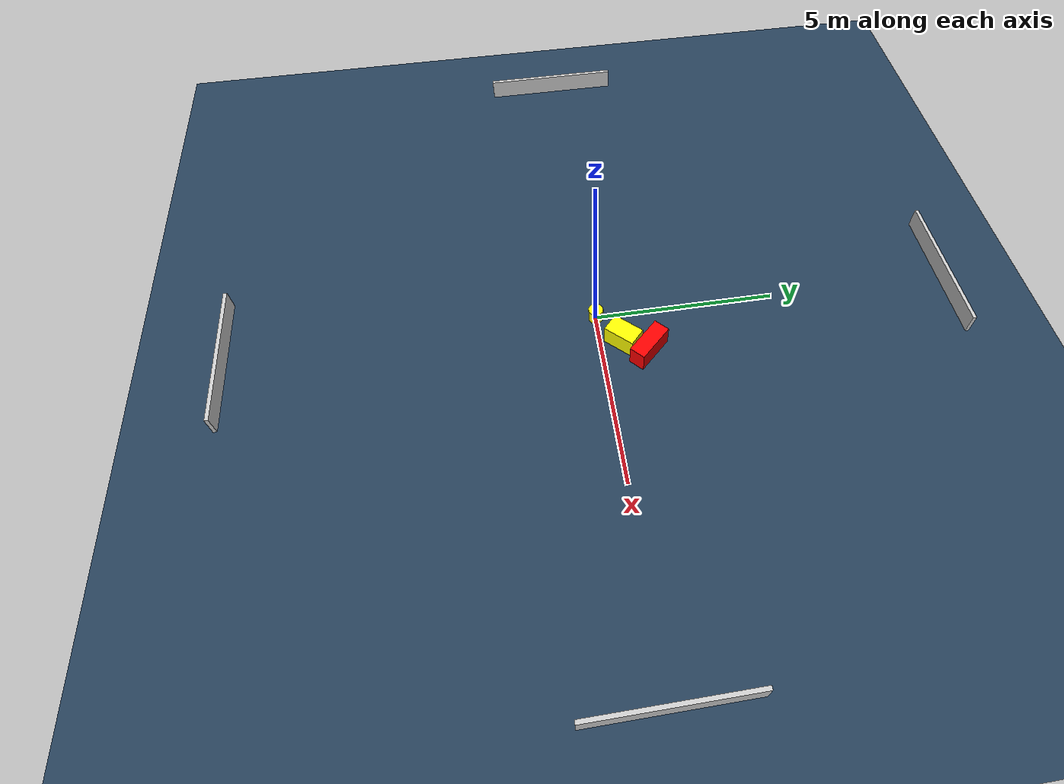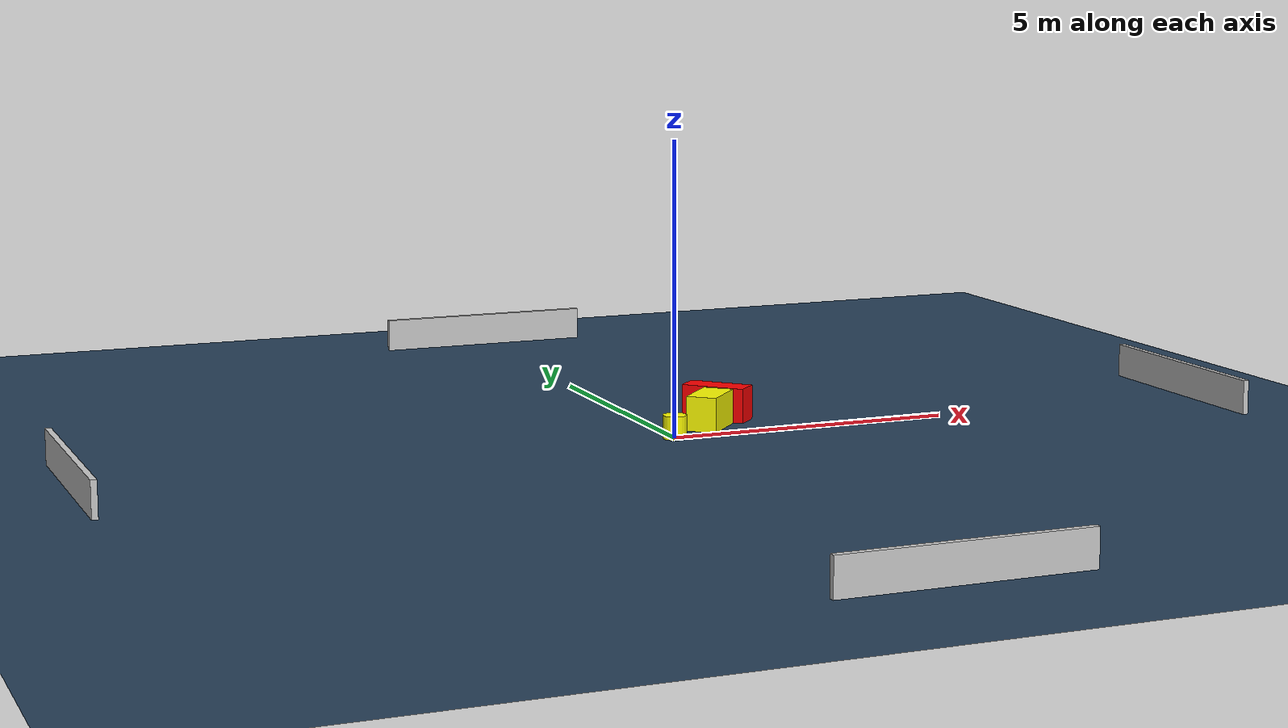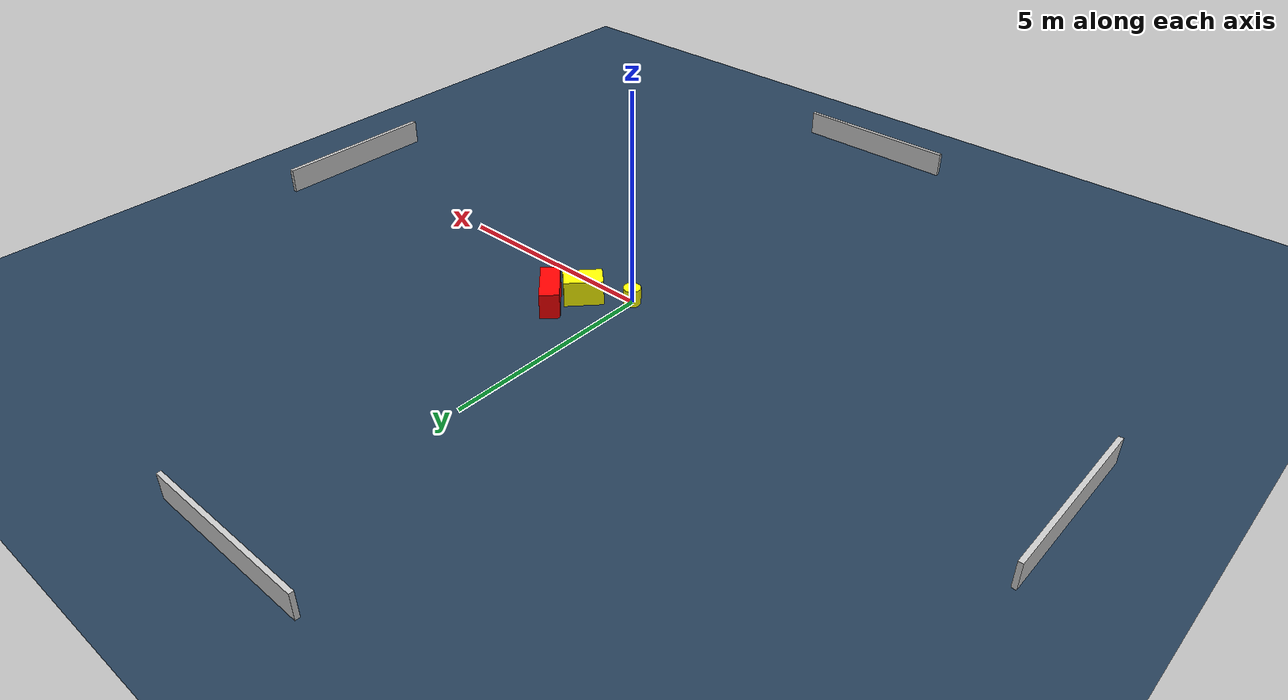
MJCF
<?xml version="1.0" ?>
<mujoco model="generated_environment">
  <option timestep="0.01" integrator="RK4" cone="elliptic"/>
  <default>
    <geom density="1"/>
  </default>
  <asset>
    <texture builtin="gradient" height="3072" name="skybox" rgb1="0.3 0.5 0.7" rgb2="0 0 0" type="skybox" width="512"/>
    <texture builtin="checker" height="300" name="groundplane" rgb1="0.2 0.3 0.4" rgb2="0.1 0.2 0.3" type="2d" width="300"/>
    <material name="groundplane" reflectance="0.2" texrepeat="5 5" texture="groundplane"/>
  </asset>
  <worldbody>
    <light dir="0 0 -1" directional="true" pos="0 0 1.5"/>
    <geom condim="3" friction="0.5 0.005 0.001" material="groundplane" name="floor" pos="0 0 0" size="0 0 0.05" type="plane"/>
    <body name="walls">
      <geom name="wall_1" condim="4" pos="-10.0 0.0 0.3" rgba="0.800000011920929 0.800000011920929 0.800000011920929 1.0" size="0.05 2.0 0.3" type="box"/>
      <geom name="wall_2" condim="4" pos="10.0 0.0 0.3" rgba="0.800000011920929 0.800000011920929 0.800000011920929 1.0" size="0.05 2.0 0.3" type="box"/>
      <geom name="wall_3" condim="4" pos="0.0 -10.0 0.3" rgba="0.800000011920929 0.800000011920929 0.800000011920929 1.0" size="2.0 0.05 0.3" type="box"/>
      <geom name="wall_4" condim="4" pos="0.0 10.0 0.3" rgba="0.800000011920929 0.800000011920929 0.800000011920929 1.0" size="2.0 0.05 0.3" type="box"/>
    </body>
    <body name="robot">
      <joint name="joint_x" type="slide" pos="0 0 0" axis="1 0 0"/>
      <joint name="joint_y" type="slide" pos="0 0 0" axis="0 1 0"/>
      <geom name="robot" type="cylinder" pos="0.0 0.0 0.2" size="0.2 0.2 0.0" mass="5.0" friction="1.0 0.005 0.0001" condim="4" rgba="1.0 1.0 0.0 1.0"/>
    </body>
    <body name="obstacle_1_movable">
      <geom name="obstacle_1_movable" condim="4" pos="0.9049463796542975 0.6082168321493202 0.3" euler="0 0 46.989711875382724" friction="0.0 0.005 0.001" rgba="1.0 1.0 0.0 1.0" size="0.43952234061791684 0.2640513983364863 0.3" type="box" mass="0.1"/>
      <joint type="free"/>
    </body>
    <body name="obstacle_2_static">
      <geom name="obstacle_2_static" condim="4" pos="1.3110004966414672 1.2313256660216771 0.3" euler="0 0 133.6724793502745" friction="0.0 0.005 0.001" rgba="1.0 0.0 0.0 1.0" size="0.5664174097932138 0.22282089856463494 0.3" type="box"/>
    </body>
  </worldbody>
  <actuator>
    <motor name="actuator_x" joint="joint_x" gear="1" ctrlrange="-1 1"/>
    <motor name="actuator_y" joint="joint_y" gear="1" ctrlrange="-1 1"/>
  </actuator>
</mujoco>
